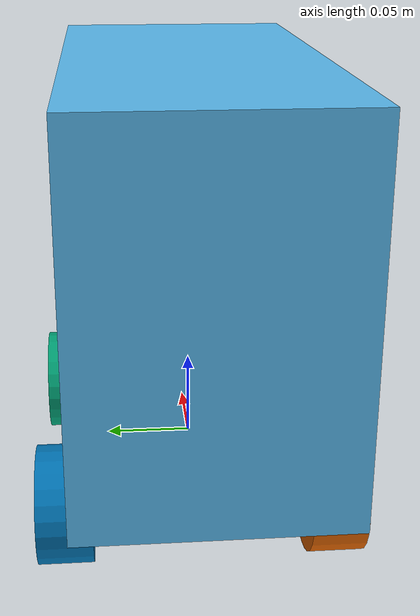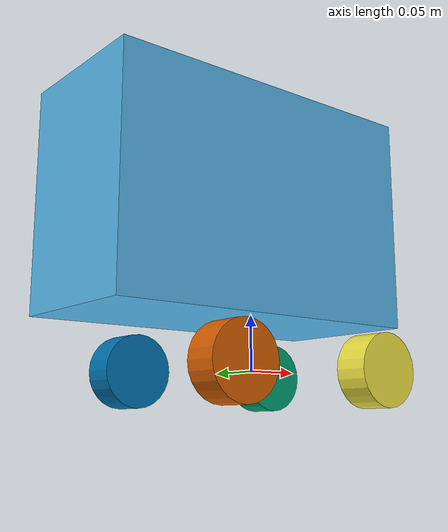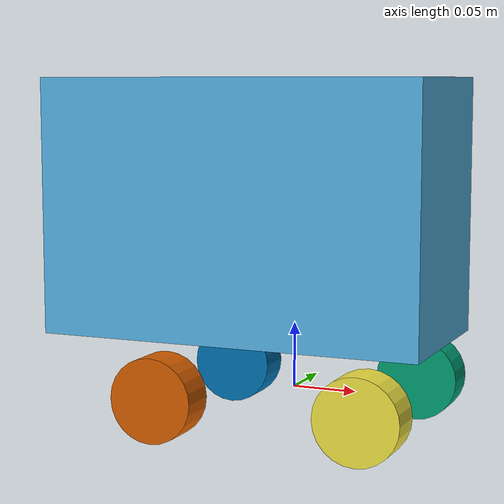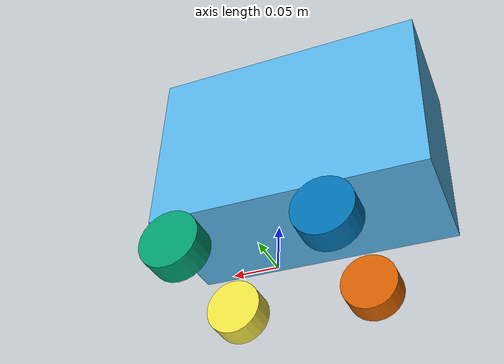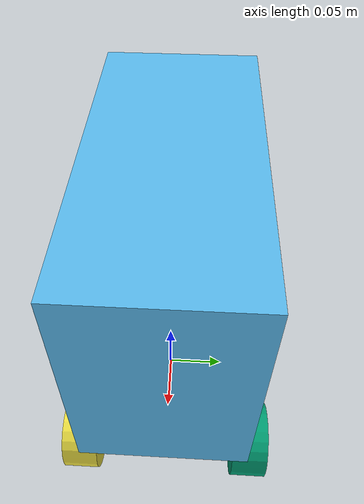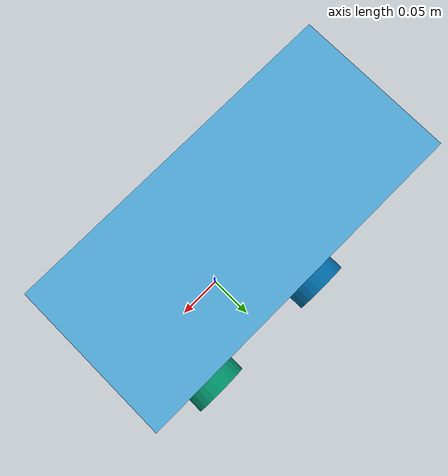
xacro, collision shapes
<?xml version="1.0"?>
<robot xmlns:xacro="http://www.ros.org/wiki/xacro">

  <!-- Rosmaster X3 dimensions -->
  <xacro:property name="total_width" value="0.19940"/>
  <xacro:property name="wheel_width" value="0.0304"/>
  <xacro:property name="wheel_radius" value="0.0325"/>
  <xacro:property name="total_height" value="0.26225"/>
  <xacro:property name="base_length" value="0.300"/>
  <xacro:property name="centered_length" value="0.238"/>
  <xacro:property name="base_x_offset" value="${(centered_length - base_length) / 2}"/>
  <xacro:property name="base_size_x" value="${base_length}"/>
  <xacro:property name="base_size_y" value="${total_width - (2 * wheel_width)}"/>
  <xacro:property name="base_size_z" value="${total_height - (2 * wheel_radius)}"/>
  <xacro:property name="base_mass" value="4.6"/>

  <xacro:property name="wheel_mass" value="0.091"/>
  <xacro:property name="wheel_xoff" value="0.08"/>
  <xacro:property name="wheel_yoff" value="-0.01"/>
  <xacro:property name="wheel_separation" value="0.169"/>

  <xacro:macro name="rosmaster_wheel" params="side joint_name x_reflect y_reflect mesh_name">
    <link name="${side}_wheel_link">
      <visual>
        <origin xyz="0 0 0" rpy="${pi/2} 0 0"/>
        <geometry>
          <mesh filename="file://$(find anhc_robot_description)/meshes/rosmaster_x3/visual/${mesh_name}"/>
        </geometry>
      </visual>
      <collision>
        <origin xyz="0 0 0" rpy="${pi/2} 0 0"/>
        <geometry>
          <cylinder radius="${wheel_radius}" length="${wheel_width}"/>
        </geometry>
      </collision>
      <inertial>
        <origin xyz="0 0 0" rpy="0 0 0"/>
        <mass value="${wheel_mass}"/>
        <inertia
          ixx="${(wheel_mass/12.0) * (3*wheel_radius*wheel_radius + wheel_width*wheel_width)}" ixy="0" ixz="0"
          iyy="${(wheel_mass/2.0) * (wheel_radius*wheel_radius)}" iyz="0"
          izz="${(wheel_mass/12.0) * (3*wheel_radius*wheel_radius + wheel_width*wheel_width)}"/>
      </inertial>
    </link>

    <joint name="${joint_name}" type="continuous">
      <axis xyz="0 1 0"/>
      <parent link="base_link"/>
      <child link="${side}_wheel_link"/>
      <origin xyz="${x_reflect*wheel_xoff} ${y_reflect*(wheel_separation/2+wheel_yoff)} ${-wheel_radius}" rpy="0 0 0"/>
    </joint>

    <gazebo reference="${side}_wheel_link">
      <mu1>1.0</mu1>
      <mu2>0.0</mu2>
    </gazebo>
  </xacro:macro>

  <link name="base_footprint"/>
  <link name="base_link">
    <visual>
      <geometry>
        <mesh filename="file://$(find anhc_robot_description)/meshes/rosmaster_x3/visual/base_link_X3.STL"/>
      </geometry>
      <origin xyz="0 0 0" rpy="0 0 0"/>
    </visual>
    <collision>
      <geometry>
        <box size="${base_size_x} ${base_size_y} ${base_size_z}"/>
      </geometry>
      <origin xyz="${base_x_offset} 0 ${base_size_z/2 + wheel_radius/4}" rpy="0 0 0"/>
    </collision>
    <inertial>
      <origin xyz="${base_x_offset} 0 ${base_size_z/2 + wheel_radius/4}" rpy="0 0 0"/>
      <mass value="${base_mass}"/>
      <inertia
        ixx="${(1/12) * base_mass * ((base_size_y * base_size_y) + (base_size_z * base_size_z))}" ixy="0.0" ixz="0.0"
        iyy="${(1/12) * base_mass * ((base_size_x * base_size_x) + (base_size_z * base_size_z))}" iyz="0.0"
        izz="${(1/12) * base_mass * ((base_size_x * base_size_x) + (base_size_y * base_size_y))}"/>
    </inertial>
  </link>

  <joint name="base_joint" type="fixed">
    <parent link="base_footprint"/>
    <child link="base_link"/>
    <origin xyz="0 0 ${wheel_radius}" rpy="0 0 0"/>
  </joint>

  <xacro:rosmaster_wheel side="front_left"  joint_name="front_left_wheel_joint"  x_reflect=" 1" y_reflect=" 1" mesh_name="front_left_wheel_X3.STL"/>
  <xacro:rosmaster_wheel side="front_right" joint_name="front_right_wheel_joint" x_reflect=" 1" y_reflect="-1" mesh_name="front_right_wheel_X3.STL"/>
  <xacro:rosmaster_wheel side="back_left"   joint_name="back_left_wheel_joint"   x_reflect="-1" y_reflect=" 1" mesh_name="back_left_wheel_X3.STL"/>
  <xacro:rosmaster_wheel side="back_right"  joint_name="back_right_wheel_joint"  x_reflect="-1" y_reflect="-1" mesh_name="back_right_wheel_X3.STL"/>

</robot>
